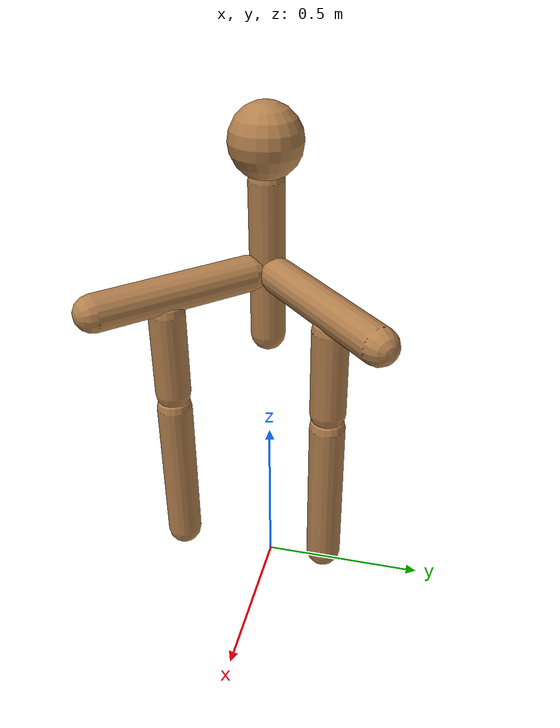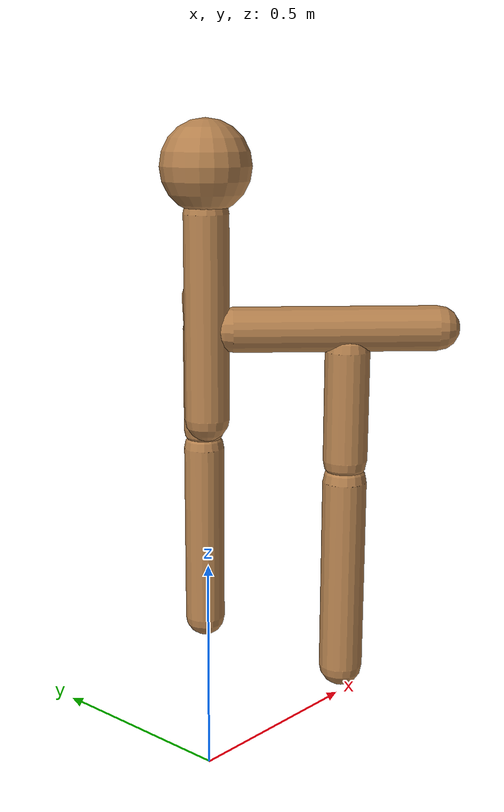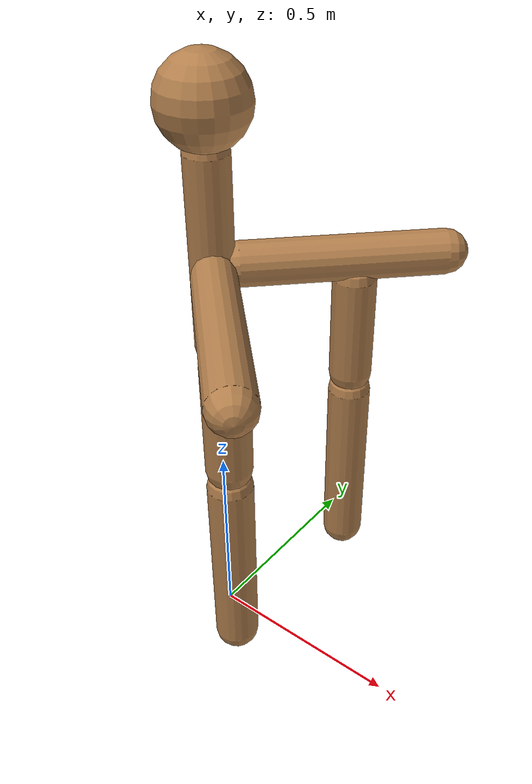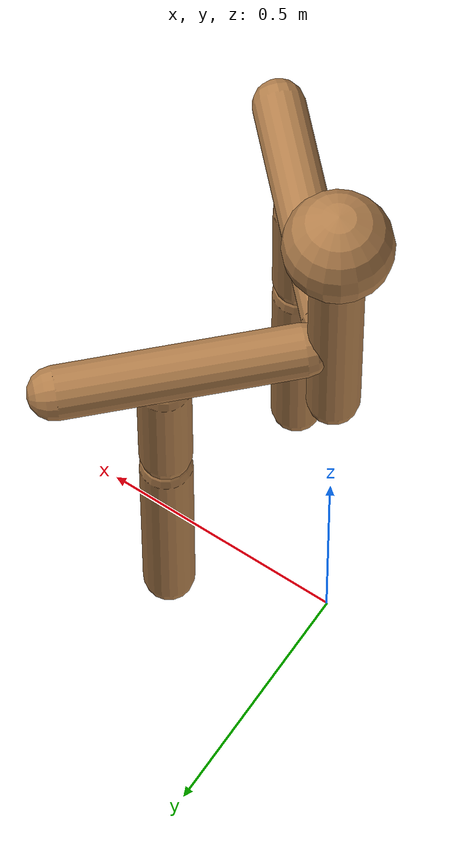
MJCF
<?xml version='1.0' encoding='UTF-8'?>
<!-- Universal Animal Template: unimal -->
<mujoco model="unimal">
  <compiler angle="degree"/>
  <size njmax="2000" nconmax="500"/>
  <option timestep=".005">
    <flag filterparent="disable"/>
  </option>
  <!-- Common defaults to make search space tractable -->
  <default>
    <!-- Define motor defaults -->
    <motor ctrlrange="-1 1" ctrllimited="true"/>
    <!-- Define joint defaults -->
    <default class="normal_joint">
      <joint type="hinge" damping="1" stiffness="1" armature="1" limited="true" range="-120 120" solimplimit="0 0.99 0.01"/>
    </default>
    <default class="walker_joint">
      <joint type="hinge" damping="0.2" stiffness="1" armature=".01" limited="true" range="-120 120" solimplimit="0 0.99 0.01"/>
    </default>
    <default class="stiff_joint">
      <joint type="hinge" damping="5" stiffness="10" armature=".01" limited="true" solimplimit="0 0.99 0.01"/>
    </default>
    <default class="free">
      <joint limited="false" damping="0" armature="0" stiffness="0"/>
    </default>
    <default class="growth_site">
      <site size="1e-6 1e-6 1e-6"/>
    </default>
    <default class="torso_growth_site">
      <site size="1e-6 1e-6 1e-6"/>
    </default>
    <default class="mirror_growth_site">
      <site size="1e-6 1e-6 1e-6"/>
    </default>
    <default class="btm_pos_site">
      <site size="1e-6 1e-6 1e-6"/>
    </default>
    <default class="box_face_site">
      <site size="1e-6 1e-6 1e-6"/>
    </default>
    <default class="imu_vel">
      <site type="box" size="0.05" rgba="1 0 0 0"/>
    </default>
    <default class="touch_site">
      <site group="3" rgba="0 0 1 .3"/>
    </default>
    <default class="food_site">
      <site material="food" size="0.15"/>
    </default>
    <!-- Define geom defaults -->
    <geom type="capsule" condim="3" friction="0.7 0.1 0.1" material="self"/>
  </default>
  <worldbody>
    <light diffuse="1 1 1" directional="true" exponent="1" pos="0 0 8" specular="0.1 0.1 0.1" dir="0 0 -1"/>
    <!-- Programatically generated xml goes here -->
    <body name="torso/0" pos="0 0 1.4">
      <joint name="root" type="free" class="free"/>
      <site name="root" class="imu_vel"/>
      <geom name="torso/0" type="sphere" size="0.1" condim="3" density="900"/>
      <camera name="side" pos="0 -7 2" xyaxes="1 0 0 0 1 2" mode="trackcom"/>
      <site name="torso/0" class="growth_site" pos="0 0 0"/>
      <site name="torso/btm_pos/0" class="btm_pos_site" pos="0 0 -0.1"/>
      <site name="torso/touch/0" class="touch_site" size="0.11"/>
      <site name="torso/vertical/0" class="torso_growth_site" pos="0 0 -0.1"/>
      <body name="limb/4" pos="0.0 0.0 -0.1">
        <joint name="limbx/4" type="hinge" class="normal_joint" range="0 30" pos="0.0 0.0 0.05" axis="1.0 0.0 0.0"/>
        <geom name="limb/4" type="capsule" fromto="0.0 0.0 0.0 0.0 0.0 -0.45" size="0.05" density="800"/>
        <site name="limb/mid/4" class="growth_site" pos="0.0 0.0 -0.25"/>
        <site name="limb/btm/4" class="growth_site" pos="0.0 0.0 -0.45"/>
        <site name="limb/btm_pos/4" class="btm_pos_site" pos="0.0 0.0 -0.45"/>
        <site name="limb/touch/4" class="touch_site" size="0.060000000000000005" fromto="0.0 0.0 0.0 0.0 0.0 -0.45" type="capsule"/>
        <body name="limb/18" pos="0.04 0.04 -0.25">
          <joint name="limby/18" type="hinge" class="normal_joint" range="-60 60" pos="-0.04 -0.04 0.0" axis="-0.5 0.5 0.7071"/>
          <geom name="limb/18" type="capsule" fromto="0.0 0.0 0.0 0.32 0.32 0.0" size="0.05" density="800"/>
          <site name="limb/mid/18" class="mirror_growth_site" pos="0.18 0.18 0.0"/>
          <site name="limb/btm/18" class="mirror_growth_site" pos="0.32 0.32 0.0"/>
          <site name="limb/btm_pos/18" class="btm_pos_site" pos="0.32 0.32 0.0"/>
          <site name="limb/touch/18" class="touch_site" size="0.060000000000000005" fromto="0.0 0.0 0.0 0.32 0.32 0.0" type="capsule"/>
          <body name="limb/22" pos="0.18 0.18 -0.05">
            <joint name="limbx/22" type="hinge" class="normal_joint" range="-30 0" pos="0.0 0.0 0.05" axis="1.0 0.0 0.0"/>
            <geom name="limb/22" type="capsule" fromto="0.0 0.0 0.0 0.0 0.0 -0.25" size="0.05" density="800"/>
            <site name="limb/mid/22" class="mirror_growth_site" pos="0.0 0.0 -0.15"/>
            <site name="limb/btm/22" class="mirror_growth_site" pos="0.0 0.0 -0.25"/>
            <site name="limb/btm_pos/22" class="btm_pos_site" pos="0.0 0.0 -0.3"/>
            <site name="limb/touch/22" class="touch_site" size="0.060000000000000005" fromto="0.0 0.0 0.0 0.0 0.0 -0.25" type="capsule"/>
            <body name="limb/24" pos="0.0 0.0 -0.3">
              <joint name="limbx/24" type="hinge" class="normal_joint" range="-60 60" pos="0.0 0.0 0.05" axis="1.0 0.0 0.0"/>
              <joint name="limby/24" type="hinge" class="normal_joint" range="-60 30" pos="0.0 0.0 0.05" axis="0.0 1.0 0.0"/>
              <geom name="limb/24" type="capsule" fromto="0.0 0.0 0.0 0.0 0.0 -0.45" size="0.05" density="800"/>
              <site name="limb/mid/24" class="mirror_growth_site" pos="0.0 0.0 -0.25"/>
              <site name="limb/btm/24" class="mirror_growth_site" pos="0.0 0.0 -0.45"/>
              <site name="limb/btm_pos/24" class="btm_pos_site" pos="0.0 0.0 -0.5"/>
              <site name="limb/touch/24" class="touch_site" size="0.060000000000000005" fromto="0.0 0.0 0.0 0.0 0.0 -0.45" type="capsule"/>
            </body>
          </body>
        </body>
        <body name="limb/19" pos="0.04 -0.04 -0.25">
          <joint name="limby/19" type="hinge" class="normal_joint" range="-60 60" pos="-0.04 0.04 0.0" axis="0.5 0.5 -0.7071"/>
          <geom name="limb/19" type="capsule" fromto="0.0 0.0 0.0 0.32 -0.32 0.0" size="0.05" density="800"/>
          <site name="limb/mid/19" class="mirror_growth_site" pos="0.18 -0.18 0.0"/>
          <site name="limb/btm/19" class="mirror_growth_site" pos="0.32 -0.32 0.0"/>
          <site name="limb/btm_pos/19" class="btm_pos_site" pos="0.32 -0.32 0.0"/>
          <site name="limb/touch/19" class="touch_site" size="0.060000000000000005" fromto="0.0 0.0 0.0 0.32 -0.32 0.0" type="capsule"/>
          <body name="limb/23" pos="0.18 -0.18 -0.05">
            <joint name="limbx/23" type="hinge" class="normal_joint" range="-30 0" pos="0.0 0.0 0.05" axis="1.0 0.0 0.0"/>
            <geom name="limb/23" type="capsule" fromto="0.0 0.0 0.0 0.0 0.0 -0.25" size="0.05" density="800"/>
            <site name="limb/mid/23" class="mirror_growth_site" pos="0.0 0.0 -0.15"/>
            <site name="limb/btm/23" class="mirror_growth_site" pos="0.0 0.0 -0.25"/>
            <site name="limb/btm_pos/23" class="btm_pos_site" pos="0.0 0.0 -0.3"/>
            <site name="limb/touch/23" class="touch_site" size="0.060000000000000005" fromto="0.0 0.0 0.0 0.0 0.0 -0.25" type="capsule"/>
            <body name="limb/25" pos="0.0 0.0 -0.3">
              <joint name="limbx/25" type="hinge" class="normal_joint" range="-60 60" pos="0.0 0.0 0.05" axis="1.0 0.0 0.0"/>
              <joint name="limby/25" type="hinge" class="normal_joint" range="-60 30" pos="0.0 0.0 0.05" axis="0.0 1.0 0.0"/>
              <geom name="limb/25" type="capsule" fromto="0.0 0.0 0.0 0.0 0.0 -0.45" size="0.05" density="800"/>
              <site name="limb/mid/25" class="mirror_growth_site" pos="0.0 0.0 -0.25"/>
              <site name="limb/btm/25" class="mirror_growth_site" pos="0.0 0.0 -0.45"/>
              <site name="limb/btm_pos/25" class="btm_pos_site" pos="0.0 0.0 -0.5"/>
              <site name="limb/touch/25" class="touch_site" size="0.060000000000000005" fromto="0.0 0.0 0.0 0.0 0.0 -0.45" type="capsule"/>
            </body>
          </body>
        </body>
      </body>
    </body>
  </worldbody>
  <actuator>
    <motor joint="limbx/4" gear="300" name="limbx/4"/>
    <motor joint="limby/18" gear="300" name="limby/18"/>
    <motor joint="limbx/22" gear="250" name="limbx/22"/>
    <motor joint="limbx/24" gear="200" name="limbx/24"/>
    <motor joint="limby/24" gear="200" name="limby/24"/>
    <motor joint="limby/19" gear="300" name="limby/19"/>
    <motor joint="limbx/23" gear="250" name="limbx/23"/>
    <motor joint="limbx/25" gear="200" name="limbx/25"/>
    <motor joint="limby/25" gear="200" name="limby/25"/>
  </actuator>
  <sensor>
    <accelerometer name="torso_accel" site="root"/>
    <gyro name="torso_gyro" site="root"/>
    <velocimeter name="torso_vel" site="root"/>
    <subtreeangmom name="unimal_am" body="torso/0"/>
    <touch name="torso/0" site="torso/touch/0"/>
    <touch name="limb/4" site="limb/touch/4"/>
    <touch name="limb/18" site="limb/touch/18"/>
    <touch name="limb/22" site="limb/touch/22"/>
    <touch name="limb/24" site="limb/touch/24"/>
    <touch name="limb/19" site="limb/touch/19"/>
    <touch name="limb/23" site="limb/touch/23"/>
    <touch name="limb/25" site="limb/touch/25"/>
  </sensor>
  <!-- Add hfield assets -->
  <asset/>
  <!-- List of contacts to exclude -->
  <contact>
    <exclude name="limb/18:limb/19" body1="limb/18" body2="limb/19"/>
  </contact>
  <!-- Define material, texture etc -->
  <asset>
    <material name="grid" texture="grid" texrepeat="1 1" texuniform="true" reflectance="0.1"/>
    <material name="hfield" texture="hfield" texrepeat="1 1" texuniform="true" reflectance="0.1"/>
    <material name="wall" texture="wall" texrepeat="1 1" texuniform="true" reflectance=".5"/>
    <material name="platform" texture="platform" texrepeat="1 1" texuniform="true" reflectance=".5"/>
    <material name="boundary" texture="boundary" texrepeat="1 1" texuniform="true" reflectance=".5"/>
    <material name="jump" texture="jump" texrepeat="1 1" texuniform="true" reflectance=".5"/>
    <material name="goal" rgba="1 0 0 1"/>
    <material name="food" rgba="0 0 1 1" emission="1"/>
    <material name="init_position" rgba="0 1 0 0.7"/>
    <material name="self" rgba=".7 .5 .3 1"/>
    <material name="self_invisible" rgba=".7 .5 .3 0"/>
    <material name="self_default" rgba=".7 .5 .3 1"/>
    <material name="self_highlight" rgba="0 .5 .3 1"/>
    <material name="effector" rgba=".7 .4 .2 1"/>
    <material name="effector_default" rgba=".7 .4 .2 1"/>
    <material name="effector_highlight" rgba="0 .5 .3 1"/>
    <material name="decoration" rgba=".3 .5 .7 1"/>
    <material name="eye" rgba="0 .2 1 1"/>
    <material name="target" rgba=".6 .3 .3 1"/>
    <material name="target_default" rgba=".6 .3 .3 1"/>
    <material name="target_highlight" rgba=".6 .3 .3 .4"/>
    <material name="site" rgba=".5 .5 .5 .3"/>
    <material name="ball" texture="ball"/>
  </asset>
  <asset>
    <texture name="grid" type="2d" builtin="checker" rgb1="0.4 0.4 0.4" rgb2="0.4 0.4 0.4" width="300" height="300" mark="edge" markrgb="0.2 0.2 0.2"/>
    <texture name="hfield" type="2d" builtin="checker" rgb1="0.4 0.4 0.4" rgb2="0.4 0.4 0.4" width="300" height="300" mark="edge" markrgb="0.2 0.2 0.2"/>
    <texture name="wall" type="2d" builtin="flat" rgb1="0.9 0.7 0" rgb2="0.9 0.7 0" width="300" height="300"/>
    <texture name="platform" type="2d" builtin="flat" rgb1="0.3 0 0.8" rgb2="0.3 0 0.8" width="300" height="300"/>
    <texture name="boundary" type="2d" builtin="flat" rgb1="0.3 0.3 0.3" rgb2="0.3 0.3 0.3" width="300" height="300"/>
    <texture name="jump" type="2d" builtin="flat" rgb1="0.3 0.3 0.3" rgb2="0.3 0.3 0.3" width="300" height="300"/>
    <texture name="skybox" type="skybox" builtin="gradient" rgb1="1 1 1" rgb2="0.6 0.6 0.6" width="800" height="800"/>
    <texture name="ball" builtin="checker" mark="cross" width="151" height="151" rgb1="0.1 0.1 0.1" rgb2="0.9 0.9 0.9" markrgb="1 1 1"/>
  </asset>
  <visual>
    <headlight ambient="0.6 0.6 0.6" diffuse="0.3 0.3 0.3" specular="0 0 0"/>
    <map znear=".01" shadowclip="0.5"/>
    <quality shadowsize="16384"/>
  </visual>
</mujoco>
